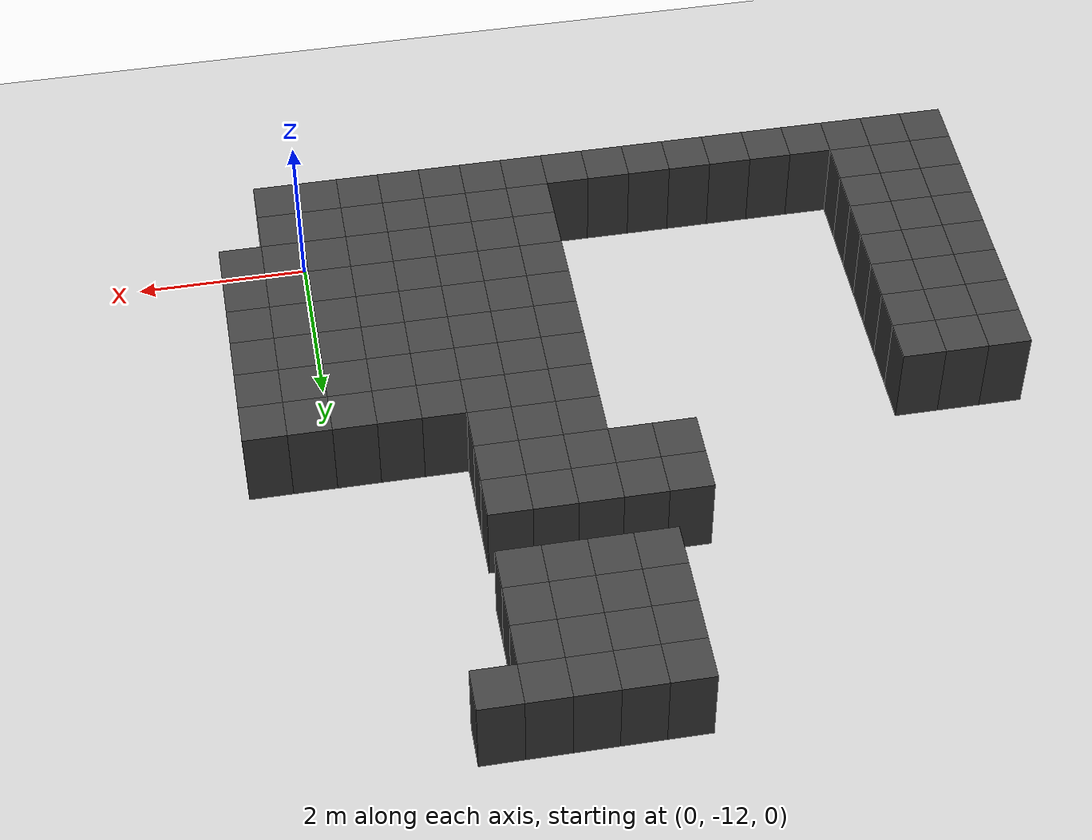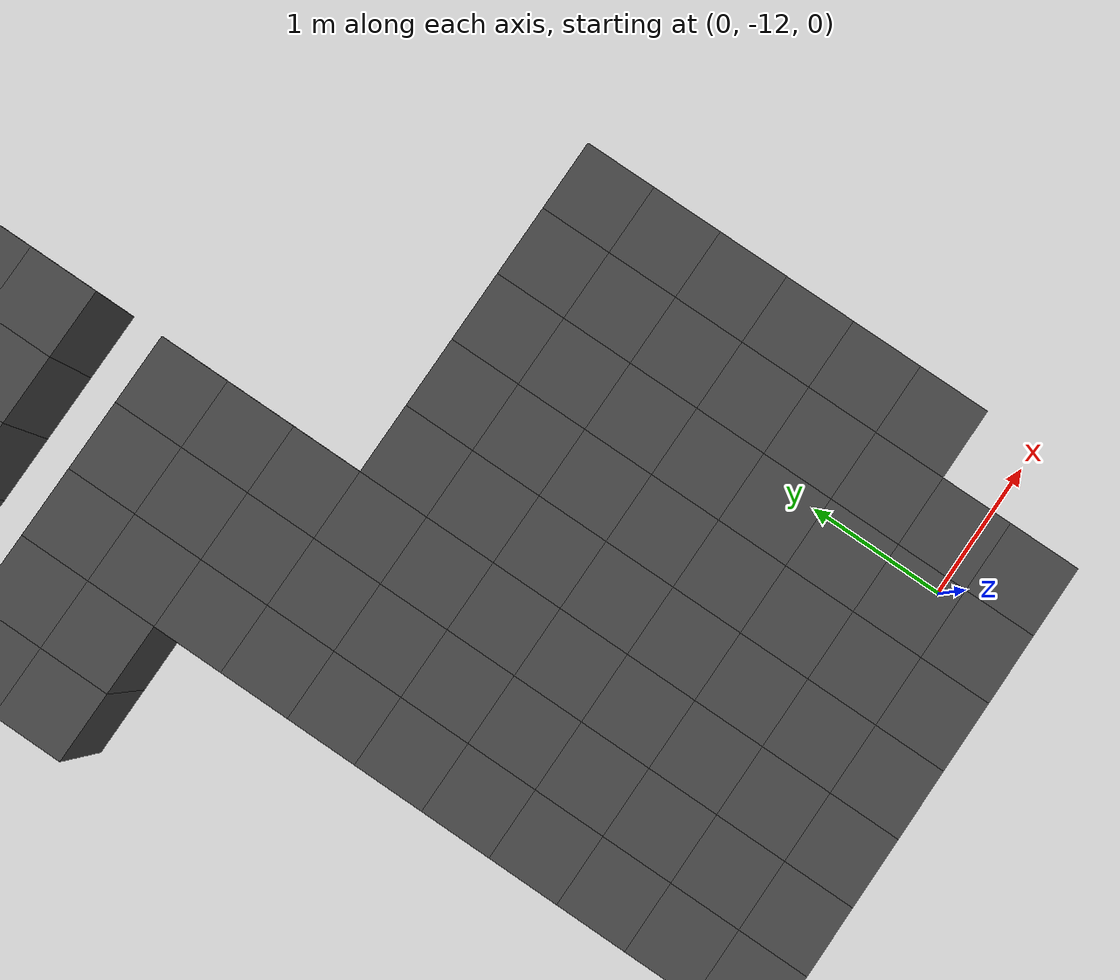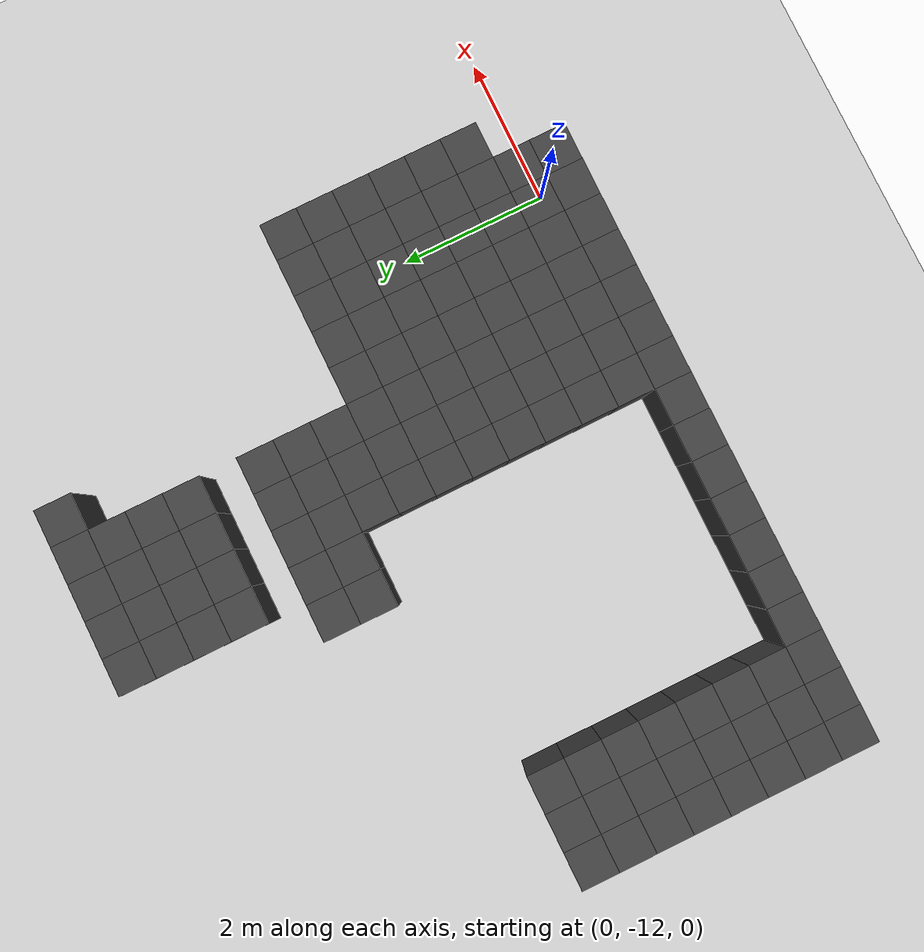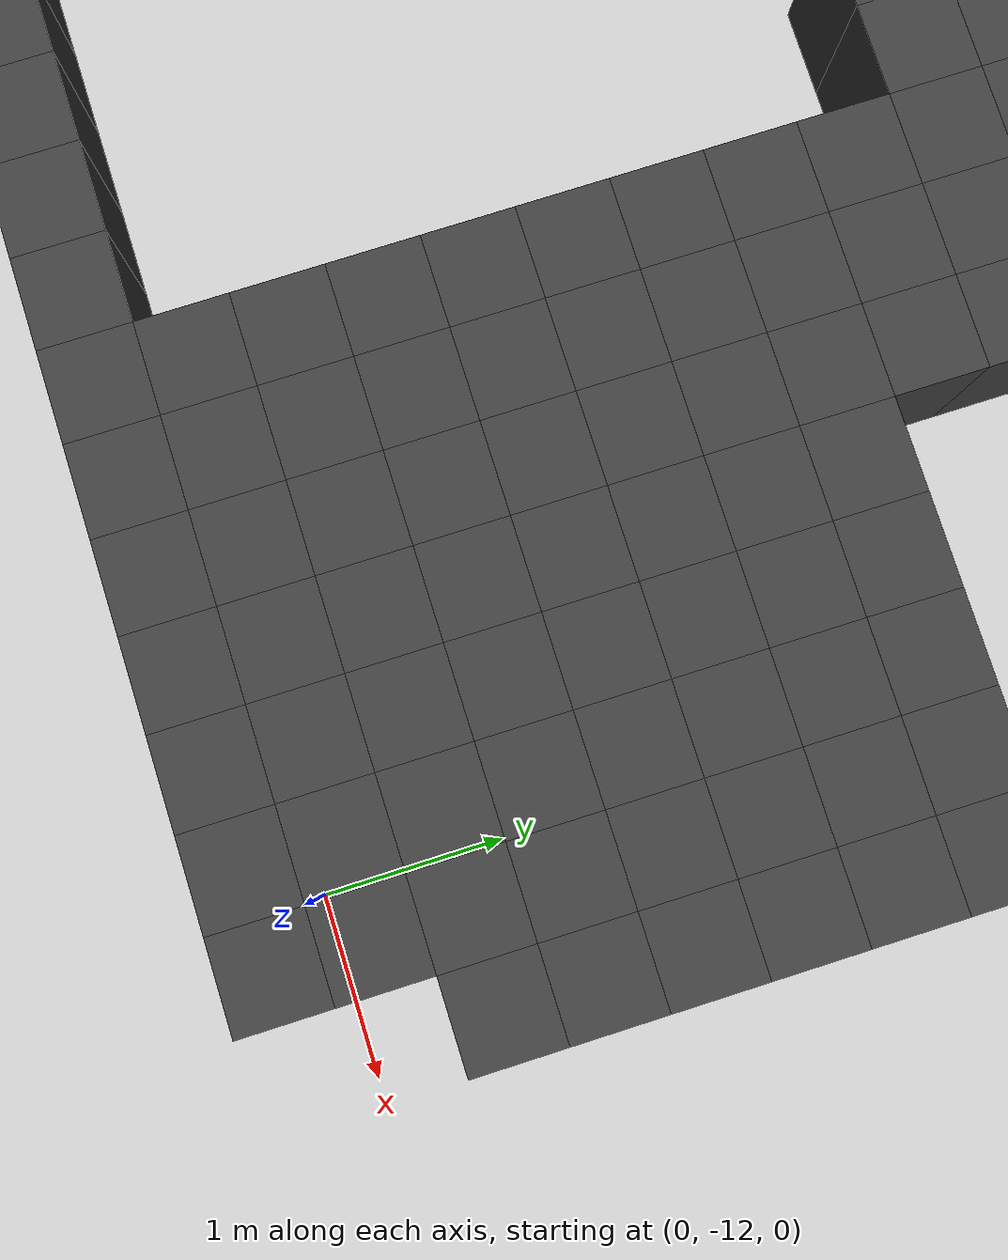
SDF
<sdf version="1.7">
 <world name="map_12818">
  <model name="ground_plane">
   <static>true</static>
   <link name="link">
    <collision name="collision">
     <geometry><plane><normal>0 0 1</normal><size>200 200</size></plane></geometry>
    </collision>
    <visual name="visual">
     <geometry><plane><normal>0 0 1</normal><size>200 200</size></plane></geometry>
     <material><ambient>0.8 0.8 0.8 1</ambient><diffuse>0.8 0.8 0.8 1</diffuse></material>
    </visual>
   </link>
  </model>
  <model name="maze_environment">
   <static>true</static>
   <link name="wall_1441">
    <pose>-3.250 -4.750 0.500 0 0 0</pose>
    <collision name="col"><geometry><box><size>0.5 0.5 1.0</size></box></geometry></collision>
    <visual name="vis">
     <geometry><box><size>0.5 0.5 1.0</size></box></geometry>
     <material><ambient>0.15 0.15 0.15 1</ambient><diffuse>0.25 0.25 0.25 1</diffuse></material>
    </visual>
   </link>
   <link name="wall_1442">
    <pose>-2.750 -4.750 0.500 0 0 0</pose>
    <collision name="col"><geometry><box><size>0.5 0.5 1.0</size></box></geometry></collision>
    <visual name="vis">
     <geometry><box><size>0.5 0.5 1.0</size></box></geometry>
     <material><ambient>0.15 0.15 0.15 1</ambient><diffuse>0.25 0.25 0.25 1</diffuse></material>
    </visual>
   </link>
   <link name="wall_1443">
    <pose>-2.250 -4.750 0.500 0 0 0</pose>
    <collision name="col"><geometry><box><size>0.5 0.5 1.0</size></box></geometry></collision>
    <visual name="vis">
     <geometry><box><size>0.5 0.5 1.0</size></box></geometry>
     <material><ambient>0.15 0.15 0.15 1</ambient><diffuse>0.25 0.25 0.25 1</diffuse></material>
    </visual>
   </link>
   <link name="wall_1444">
    <pose>-1.750 -4.750 0.500 0 0 0</pose>
    <collision name="col"><geometry><box><size>0.5 0.5 1.0</size></box></geometry></collision>
    <visual name="vis">
     <geometry><box><size>0.5 0.5 1.0</size></box></geometry>
     <material><ambient>0.15 0.15 0.15 1</ambient><diffuse>0.25 0.25 0.25 1</diffuse></material>
    </visual>
   </link>
   <link name="wall_1445">
    <pose>-1.250 -4.750 0.500 0 0 0</pose>
    <collision name="col"><geometry><box><size>0.5 0.5 1.0</size></box></geometry></collision>
    <visual name="vis">
     <geometry><box><size>0.5 0.5 1.0</size></box></geometry>
     <material><ambient>0.15 0.15 0.15 1</ambient><diffuse>0.25 0.25 0.25 1</diffuse></material>
    </visual>
   </link>
   <link name="wall_1476">
    <pose>-3.250 -5.250 0.500 0 0 0</pose>
    <collision name="col"><geometry><box><size>0.5 0.5 1.0</size></box></geometry></collision>
    <visual name="vis">
     <geometry><box><size>0.5 0.5 1.0</size></box></geometry>
     <material><ambient>0.15 0.15 0.15 1</ambient><diffuse>0.25 0.25 0.25 1</diffuse></material>
    </visual>
   </link>
   <link name="wall_1477">
    <pose>-2.750 -5.250 0.500 0 0 0</pose>
    <collision name="col"><geometry><box><size>0.5 0.5 1.0</size></box></geometry></collision>
    <visual name="vis">
     <geometry><box><size>0.5 0.5 1.0</size></box></geometry>
     <material><ambient>0.15 0.15 0.15 1</ambient><diffuse>0.25 0.25 0.25 1</diffuse></material>
    </visual>
   </link>
   <link name="wall_1478">
    <pose>-2.250 -5.250 0.500 0 0 0</pose>
    <collision name="col"><geometry><box><size>0.5 0.5 1.0</size></box></geometry></collision>
    <visual name="vis">
     <geometry><box><size>0.5 0.5 1.0</size></box></geometry>
     <material><ambient>0.15 0.15 0.15 1</ambient><diffuse>0.25 0.25 0.25 1</diffuse></material>
    </visual>
   </link>
   <link name="wall_1479">
    <pose>-1.750 -5.250 0.500 0 0 0</pose>
    <collision name="col"><geometry><box><size>0.5 0.5 1.0</size></box></geometry></collision>
    <visual name="vis">
     <geometry><box><size>0.5 0.5 1.0</size></box></geometry>
     <material><ambient>0.15 0.15 0.15 1</ambient><diffuse>0.25 0.25 0.25 1</diffuse></material>
    </visual>
   </link>
   <link name="wall_1509">
    <pose>-3.250 -5.750 0.500 0 0 0</pose>
    <collision name="col"><geometry><box><size>0.5 0.5 1.0</size></box></geometry></collision>
    <visual name="vis">
     <geometry><box><size>0.5 0.5 1.0</size></box></geometry>
     <material><ambient>0.15 0.15 0.15 1</ambient><diffuse>0.25 0.25 0.25 1</diffuse></material>
    </visual>
   </link>
   <link name="wall_1510">
    <pose>-2.750 -5.750 0.500 0 0 0</pose>
    <collision name="col"><geometry><box><size>0.5 0.5 1.0</size></box></geometry></collision>
    <visual name="vis">
     <geometry><box><size>0.5 0.5 1.0</size></box></geometry>
     <material><ambient>0.15 0.15 0.15 1</ambient><diffuse>0.25 0.25 0.25 1</diffuse></material>
    </visual>
   </link>
   <link name="wall_1511">
    <pose>-2.250 -5.750 0.500 0 0 0</pose>
    <collision name="col"><geometry><box><size>0.5 0.5 1.0</size></box></geometry></collision>
    <visual name="vis">
     <geometry><box><size>0.5 0.5 1.0</size></box></geometry>
     <material><ambient>0.15 0.15 0.15 1</ambient><diffuse>0.25 0.25 0.25 1</diffuse></material>
    </visual>
   </link>
   <link name="wall_1512">
    <pose>-1.750 -5.750 0.500 0 0 0</pose>
    <collision name="col"><geometry><box><size>0.5 0.5 1.0</size></box></geometry></collision>
    <visual name="vis">
     <geometry><box><size>0.5 0.5 1.0</size></box></geometry>
     <material><ambient>0.15 0.15 0.15 1</ambient><diffuse>0.25 0.25 0.25 1</diffuse></material>
    </visual>
   </link>
   <link name="wall_1542">
    <pose>-3.250 -6.250 0.500 0 0 0</pose>
    <collision name="col"><geometry><box><size>0.5 0.5 1.0</size></box></geometry></collision>
    <visual name="vis">
     <geometry><box><size>0.5 0.5 1.0</size></box></geometry>
     <material><ambient>0.15 0.15 0.15 1</ambient><diffuse>0.25 0.25 0.25 1</diffuse></material>
    </visual>
   </link>
   <link name="wall_1543">
    <pose>-2.750 -6.250 0.500 0 0 0</pose>
    <collision name="col"><geometry><box><size>0.5 0.5 1.0</size></box></geometry></collision>
    <visual name="vis">
     <geometry><box><size>0.5 0.5 1.0</size></box></geometry>
     <material><ambient>0.15 0.15 0.15 1</ambient><diffuse>0.25 0.25 0.25 1</diffuse></material>
    </visual>
   </link>
   <link name="wall_1544">
    <pose>-2.250 -6.250 0.500 0 0 0</pose>
    <collision name="col"><geometry><box><size>0.5 0.5 1.0</size></box></geometry></collision>
    <visual name="vis">
     <geometry><box><size>0.5 0.5 1.0</size></box></geometry>
     <material><ambient>0.15 0.15 0.15 1</ambient><diffuse>0.25 0.25 0.25 1</diffuse></material>
    </visual>
   </link>
   <link name="wall_1545">
    <pose>-1.750 -6.250 0.500 0 0 0</pose>
    <collision name="col"><geometry><box><size>0.5 0.5 1.0</size></box></geometry></collision>
    <visual name="vis">
     <geometry><box><size>0.5 0.5 1.0</size></box></geometry>
     <material><ambient>0.15 0.15 0.15 1</ambient><diffuse>0.25 0.25 0.25 1</diffuse></material>
    </visual>
   </link>
   <link name="wall_1606">
    <pose>-3.750 -7.250 0.500 0 0 0</pose>
    <collision name="col"><geometry><box><size>0.5 0.5 1.0</size></box></geometry></collision>
    <visual name="vis">
     <geometry><box><size>0.5 0.5 1.0</size></box></geometry>
     <material><ambient>0.15 0.15 0.15 1</ambient><diffuse>0.25 0.25 0.25 1</diffuse></material>
    </visual>
   </link>
   <link name="wall_1607">
    <pose>-3.250 -7.250 0.500 0 0 0</pose>
    <collision name="col"><geometry><box><size>0.5 0.5 1.0</size></box></geometry></collision>
    <visual name="vis">
     <geometry><box><size>0.5 0.5 1.0</size></box></geometry>
     <material><ambient>0.15 0.15 0.15 1</ambient><diffuse>0.25 0.25 0.25 1</diffuse></material>
    </visual>
   </link>
   <link name="wall_1608">
    <pose>-2.750 -7.250 0.500 0 0 0</pose>
    <collision name="col"><geometry><box><size>0.5 0.5 1.0</size></box></geometry></collision>
    <visual name="vis">
     <geometry><box><size>0.5 0.5 1.0</size></box></geometry>
     <material><ambient>0.15 0.15 0.15 1</ambient><diffuse>0.25 0.25 0.25 1</diffuse></material>
    </visual>
   </link>
   <link name="wall_1609">
    <pose>-2.250 -7.250 0.500 0 0 0</pose>
    <collision name="col"><geometry><box><size>0.5 0.5 1.0</size></box></geometry></collision>
    <visual name="vis">
     <geometry><box><size>0.5 0.5 1.0</size></box></geometry>
     <material><ambient>0.15 0.15 0.15 1</ambient><diffuse>0.25 0.25 0.25 1</diffuse></material>
    </visual>
   </link>
   <link name="wall_1610">
    <pose>-1.750 -7.250 0.500 0 0 0</pose>
    <collision name="col"><geometry><box><size>0.5 0.5 1.0</size></box></geometry></collision>
    <visual name="vis">
     <geometry><box><size>0.5 0.5 1.0</size></box></geometry>
     <material><ambient>0.15 0.15 0.15 1</ambient><diffuse>0.25 0.25 0.25 1</diffuse></material>
    </visual>
   </link>
   <link name="wall_1634">
    <pose>-3.750 -7.750 0.500 0 0 0</pose>
    <collision name="col"><geometry><box><size>0.5 0.5 1.0</size></box></geometry></collision>
    <visual name="vis">
     <geometry><box><size>0.5 0.5 1.0</size></box></geometry>
     <material><ambient>0.15 0.15 0.15 1</ambient><diffuse>0.25 0.25 0.25 1</diffuse></material>
    </visual>
   </link>
   <link name="wall_1635">
    <pose>-3.250 -7.750 0.500 0 0 0</pose>
    <collision name="col"><geometry><box><size>0.5 0.5 1.0</size></box></geometry></collision>
    <visual name="vis">
     <geometry><box><size>0.5 0.5 1.0</size></box></geometry>
     <material><ambient>0.15 0.15 0.15 1</ambient><diffuse>0.25 0.25 0.25 1</diffuse></material>
    </visual>
   </link>
   <link name="wall_1636">
    <pose>-2.750 -7.750 0.500 0 0 0</pose>
    <collision name="col"><geometry><box><size>0.5 0.5 1.0</size></box></geometry></collision>
    <visual name="vis">
     <geometry><box><size>0.5 0.5 1.0</size></box></geometry>
     <material><ambient>0.15 0.15 0.15 1</ambient><diffuse>0.25 0.25 0.25 1</diffuse></material>
    </visual>
   </link>
   <link name="wall_1637">
    <pose>-2.250 -7.750 0.500 0 0 0</pose>
    <collision name="col"><geometry><box><size>0.5 0.5 1.0</size></box></geometry></collision>
    <visual name="vis">
     <geometry><box><size>0.5 0.5 1.0</size></box></geometry>
     <material><ambient>0.15 0.15 0.15 1</ambient><diffuse>0.25 0.25 0.25 1</diffuse></material>
    </visual>
   </link>
   <link name="wall_1638">
    <pose>-1.750 -7.750 0.500 0 0 0</pose>
    <collision name="col"><geometry><box><size>0.5 0.5 1.0</size></box></geometry></collision>
    <visual name="vis">
     <geometry><box><size>0.5 0.5 1.0</size></box></geometry>
     <material><ambient>0.15 0.15 0.15 1</ambient><diffuse>0.25 0.25 0.25 1</diffuse></material>
    </visual>
   </link>
   <link name="wall_1662">
    <pose>-2.750 -8.250 0.500 0 0 0</pose>
    <collision name="col"><geometry><box><size>0.5 0.5 1.0</size></box></geometry></collision>
    <visual name="vis">
     <geometry><box><size>0.5 0.5 1.0</size></box></geometry>
     <material><ambient>0.15 0.15 0.15 1</ambient><diffuse>0.25 0.25 0.25 1</diffuse></material>
    </visual>
   </link>
   <link name="wall_1663">
    <pose>-2.250 -8.250 0.500 0 0 0</pose>
    <collision name="col"><geometry><box><size>0.5 0.5 1.0</size></box></geometry></collision>
    <visual name="vis">
     <geometry><box><size>0.5 0.5 1.0</size></box></geometry>
     <material><ambient>0.15 0.15 0.15 1</ambient><diffuse>0.25 0.25 0.25 1</diffuse></material>
    </visual>
   </link>
   <link name="wall_1664">
    <pose>-1.750 -8.250 0.500 0 0 0</pose>
    <collision name="col"><geometry><box><size>0.5 0.5 1.0</size></box></geometry></collision>
    <visual name="vis">
     <geometry><box><size>0.5 0.5 1.0</size></box></geometry>
     <material><ambient>0.15 0.15 0.15 1</ambient><diffuse>0.25 0.25 0.25 1</diffuse></material>
    </visual>
   </link>
   <link name="wall_1676">
    <pose>-7.750 -8.750 0.500 0 0 0</pose>
    <collision name="col"><geometry><box><size>0.5 0.5 1.0</size></box></geometry></collision>
    <visual name="vis">
     <geometry><box><size>0.5 0.5 1.0</size></box></geometry>
     <material><ambient>0.15 0.15 0.15 1</ambient><diffuse>0.25 0.25 0.25 1</diffuse></material>
    </visual>
   </link>
   <link name="wall_1677">
    <pose>-7.250 -8.750 0.500 0 0 0</pose>
    <collision name="col"><geometry><box><size>0.5 0.5 1.0</size></box></geometry></collision>
    <visual name="vis">
     <geometry><box><size>0.5 0.5 1.0</size></box></geometry>
     <material><ambient>0.15 0.15 0.15 1</ambient><diffuse>0.25 0.25 0.25 1</diffuse></material>
    </visual>
   </link>
   <link name="wall_1678">
    <pose>-6.750 -8.750 0.500 0 0 0</pose>
    <collision name="col"><geometry><box><size>0.5 0.5 1.0</size></box></geometry></collision>
    <visual name="vis">
     <geometry><box><size>0.5 0.5 1.0</size></box></geometry>
     <material><ambient>0.15 0.15 0.15 1</ambient><diffuse>0.25 0.25 0.25 1</diffuse></material>
    </visual>
   </link>
   <link name="wall_1679">
    <pose>-2.750 -8.750 0.500 0 0 0</pose>
    <collision name="col"><geometry><box><size>0.5 0.5 1.0</size></box></geometry></collision>
    <visual name="vis">
     <geometry><box><size>0.5 0.5 1.0</size></box></geometry>
     <material><ambient>0.15 0.15 0.15 1</ambient><diffuse>0.25 0.25 0.25 1</diffuse></material>
    </visual>
   </link>
   <link name="wall_1680">
    <pose>-2.250 -8.750 0.500 0 0 0</pose>
    <collision name="col"><geometry><box><size>0.5 0.5 1.0</size></box></geometry></collision>
    <visual name="vis">
     <geometry><box><size>0.5 0.5 1.0</size></box></geometry>
     <material><ambient>0.15 0.15 0.15 1</ambient><diffuse>0.25 0.25 0.25 1</diffuse></material>
    </visual>
   </link>
   <link name="wall_1681">
    <pose>-1.750 -8.750 0.500 0 0 0</pose>
    <collision name="col"><geometry><box><size>0.5 0.5 1.0</size></box></geometry></collision>
    <visual name="vis">
     <geometry><box><size>0.5 0.5 1.0</size></box></geometry>
     <material><ambient>0.15 0.15 0.15 1</ambient><diffuse>0.25 0.25 0.25 1</diffuse></material>
    </visual>
   </link>
   <link name="wall_1682">
    <pose>-1.250 -8.750 0.500 0 0 0</pose>
    <collision name="col"><geometry><box><size>0.5 0.5 1.0</size></box></geometry></collision>
    <visual name="vis">
     <geometry><box><size>0.5 0.5 1.0</size></box></geometry>
     <material><ambient>0.15 0.15 0.15 1</ambient><diffuse>0.25 0.25 0.25 1</diffuse></material>
    </visual>
   </link>
   <link name="wall_1683">
    <pose>-0.750 -8.750 0.500 0 0 0</pose>
    <collision name="col"><geometry><box><size>0.5 0.5 1.0</size></box></geometry></collision>
    <visual name="vis">
     <geometry><box><size>0.5 0.5 1.0</size></box></geometry>
     <material><ambient>0.15 0.15 0.15 1</ambient><diffuse>0.25 0.25 0.25 1</diffuse></material>
    </visual>
   </link>
   <link name="wall_1684">
    <pose>-0.250 -8.750 0.500 0 0 0</pose>
    <collision name="col"><geometry><box><size>0.5 0.5 1.0</size></box></geometry></collision>
    <visual name="vis">
     <geometry><box><size>0.5 0.5 1.0</size></box></geometry>
     <material><ambient>0.15 0.15 0.15 1</ambient><diffuse>0.25 0.25 0.25 1</diffuse></material>
    </visual>
   </link>
   <link name="wall_1685">
    <pose>0.250 -8.750 0.500 0 0 0</pose>
    <collision name="col"><geometry><box><size>0.5 0.5 1.0</size></box></geometry></collision>
    <visual name="vis">
     <geometry><box><size>0.5 0.5 1.0</size></box></geometry>
     <material><ambient>0.15 0.15 0.15 1</ambient><diffuse>0.25 0.25 0.25 1</diffuse></material>
    </visual>
   </link>
   <link name="wall_1686">
    <pose>0.750 -8.750 0.500 0 0 0</pose>
    <collision name="col"><geometry><box><size>0.5 0.5 1.0</size></box></geometry></collision>
    <visual name="vis">
     <geometry><box><size>0.5 0.5 1.0</size></box></geometry>
     <material><ambient>0.15 0.15 0.15 1</ambient><diffuse>0.25 0.25 0.25 1</diffuse></material>
    </visual>
   </link>
   <link name="wall_1709">
    <pose>-7.750 -9.250 0.500 0 0 0</pose>
    <collision name="col"><geometry><box><size>0.5 0.5 1.0</size></box></geometry></collision>
    <visual name="vis">
     <geometry><box><size>0.5 0.5 1.0</size></box></geometry>
     <material><ambient>0.15 0.15 0.15 1</ambient><diffuse>0.25 0.25 0.25 1</diffuse></material>
    </visual>
   </link>
   <link name="wall_1710">
    <pose>-7.250 -9.250 0.500 0 0 0</pose>
    <collision name="col"><geometry><box><size>0.5 0.5 1.0</size></box></geometry></collision>
    <visual name="vis">
     <geometry><box><size>0.5 0.5 1.0</size></box></geometry>
     <material><ambient>0.15 0.15 0.15 1</ambient><diffuse>0.25 0.25 0.25 1</diffuse></material>
    </visual>
   </link>
   <link name="wall_1711">
    <pose>-6.750 -9.250 0.500 0 0 0</pose>
    <collision name="col"><geometry><box><size>0.5 0.5 1.0</size></box></geometry></collision>
    <visual name="vis">
     <geometry><box><size>0.5 0.5 1.0</size></box></geometry>
     <material><ambient>0.15 0.15 0.15 1</ambient><diffuse>0.25 0.25 0.25 1</diffuse></material>
    </visual>
   </link>
   <link name="wall_1712">
    <pose>-2.750 -9.250 0.500 0 0 0</pose>
    <collision name="col"><geometry><box><size>0.5 0.5 1.0</size></box></geometry></collision>
    <visual name="vis">
     <geometry><box><size>0.5 0.5 1.0</size></box></geometry>
     <material><ambient>0.15 0.15 0.15 1</ambient><diffuse>0.25 0.25 0.25 1</diffuse></material>
    </visual>
   </link>
   <link name="wall_1713">
    <pose>-2.250 -9.250 0.500 0 0 0</pose>
    <collision name="col"><geometry><box><size>0.5 0.5 1.0</size></box></geometry></collision>
    <visual name="vis">
     <geometry><box><size>0.5 0.5 1.0</size></box></geometry>
     <material><ambient>0.15 0.15 0.15 1</ambient><diffuse>0.25 0.25 0.25 1</diffuse></material>
    </visual>
   </link>
   <link name="wall_1714">
    <pose>-1.750 -9.250 0.500 0 0 0</pose>
    <collision name="col"><geometry><box><size>0.5 0.5 1.0</size></box></geometry></collision>
    <visual name="vis">
     <geometry><box><size>0.5 0.5 1.0</size></box></geometry>
     <material><ambient>0.15 0.15 0.15 1</ambient><diffuse>0.25 0.25 0.25 1</diffuse></material>
    </visual>
   </link>
   <link name="wall_1715">
    <pose>-1.250 -9.250 0.500 0 0 0</pose>
    <collision name="col"><geometry><box><size>0.5 0.5 1.0</size></box></geometry></collision>
    <visual name="vis">
     <geometry><box><size>0.5 0.5 1.0</size></box></geometry>
     <material><ambient>0.15 0.15 0.15 1</ambient><diffuse>0.25 0.25 0.25 1</diffuse></material>
    </visual>
   </link>
   <link name="wall_1716">
    <pose>-0.750 -9.250 0.500 0 0 0</pose>
    <collision name="col"><geometry><box><size>0.5 0.5 1.0</size></box></geometry></collision>
    <visual name="vis">
     <geometry><box><size>0.5 0.5 1.0</size></box></geometry>
     <material><ambient>0.15 0.15 0.15 1</ambient><diffuse>0.25 0.25 0.25 1</diffuse></material>
    </visual>
   </link>
   <link name="wall_1717">
    <pose>-0.250 -9.250 0.500 0 0 0</pose>
    <collision name="col"><geometry><box><size>0.5 0.5 1.0</size></box></geometry></collision>
    <visual name="vis">
     <geometry><box><size>0.5 0.5 1.0</size></box></geometry>
     <material><ambient>0.15 0.15 0.15 1</ambient><diffuse>0.25 0.25 0.25 1</diffuse></material>
    </visual>
   </link>
   <link name="wall_1718">
    <pose>0.250 -9.250 0.500 0 0 0</pose>
    <collision name="col"><geometry><box><size>0.5 0.5 1.0</size></box></geometry></collision>
    <visual name="vis">
     <geometry><box><size>0.5 0.5 1.0</size></box></geometry>
     <material><ambient>0.15 0.15 0.15 1</ambient><diffuse>0.25 0.25 0.25 1</diffuse></material>
    </visual>
   </link>
   <link name="wall_1719">
    <pose>0.750 -9.250 0.500 0 0 0</pose>
    <collision name="col"><geometry><box><size>0.5 0.5 1.0</size></box></geometry></collision>
    <visual name="vis">
     <geometry><box><size>0.5 0.5 1.0</size></box></geometry>
     <material><ambient>0.15 0.15 0.15 1</ambient><diffuse>0.25 0.25 0.25 1</diffuse></material>
    </visual>
   </link>
   <link name="wall_1742">
    <pose>-7.750 -9.750 0.500 0 0 0</pose>
    <collision name="col"><geometry><box><size>0.5 0.5 1.0</size></box></geometry></collision>
    <visual name="vis">
     <geometry><box><size>0.5 0.5 1.0</size></box></geometry>
     <material><ambient>0.15 0.15 0.15 1</ambient><diffuse>0.25 0.25 0.25 1</diffuse></material>
    </visual>
   </link>
   <link name="wall_1743">
    <pose>-7.250 -9.750 0.500 0 0 0</pose>
    <collision name="col"><geometry><box><size>0.5 0.5 1.0</size></box></geometry></collision>
    <visual name="vis">
     <geometry><box><size>0.5 0.5 1.0</size></box></geometry>
     <material><ambient>0.15 0.15 0.15 1</ambient><diffuse>0.25 0.25 0.25 1</diffuse></material>
    </visual>
   </link>
   <link name="wall_1744">
    <pose>-6.750 -9.750 0.500 0 0 0</pose>
    <collision name="col"><geometry><box><size>0.5 0.5 1.0</size></box></geometry></collision>
    <visual name="vis">
     <geometry><box><size>0.5 0.5 1.0</size></box></geometry>
     <material><ambient>0.15 0.15 0.15 1</ambient><diffuse>0.25 0.25 0.25 1</diffuse></material>
    </visual>
   </link>
   <link name="wall_1745">
    <pose>-2.750 -9.750 0.500 0 0 0</pose>
    <collision name="col"><geometry><box><size>0.5 0.5 1.0</size></box></geometry></collision>
    <visual name="vis">
     <geometry><box><size>0.5 0.5 1.0</size></box></geometry>
     <material><ambient>0.15 0.15 0.15 1</ambient><diffuse>0.25 0.25 0.25 1</diffuse></material>
    </visual>
   </link>
   <link name="wall_1746">
    <pose>-2.250 -9.750 0.500 0 0 0</pose>
    <collision name="col"><geometry><box><size>0.5 0.5 1.0</size></box></geometry></collision>
    <visual name="vis">
     <geometry><box><size>0.5 0.5 1.0</size></box></geometry>
     <material><ambient>0.15 0.15 0.15 1</ambient><diffuse>0.25 0.25 0.25 1</diffuse></material>
    </visual>
   </link>
   <link name="wall_1747">
    <pose>-1.750 -9.750 0.500 0 0 0</pose>
    <collision name="col"><geometry><box><size>0.5 0.5 1.0</size></box></geometry></collision>
    <visual name="vis">
     <geometry><box><size>0.5 0.5 1.0</size></box></geometry>
     <material><ambient>0.15 0.15 0.15 1</ambient><diffuse>0.25 0.25 0.25 1</diffuse></material>
    </visual>
   </link>
   <link name="wall_1748">
    <pose>-1.250 -9.750 0.500 0 0 0</pose>
    <collision name="col"><geometry><box><size>0.5 0.5 1.0</size></box></geometry></collision>
    <visual name="vis">
     <geometry><box><size>0.5 0.5 1.0</size></box></geometry>
     <material><ambient>0.15 0.15 0.15 1</ambient><diffuse>0.25 0.25 0.25 1</diffuse></material>
    </visual>
   </link>
   <link name="wall_1749">
    <pose>-0.750 -9.750 0.500 0 0 0</pose>
    <collision name="col"><geometry><box><size>0.5 0.5 1.0</size></box></geometry></collision>
    <visual name="vis">
     <geometry><box><size>0.5 0.5 1.0</size></box></geometry>
     <material><ambient>0.15 0.15 0.15 1</ambient><diffuse>0.25 0.25 0.25 1</diffuse></material>
    </visual>
   </link>
   <link name="wall_1750">
    <pose>-0.250 -9.750 0.500 0 0 0</pose>
    <collision name="col"><geometry><box><size>0.5 0.5 1.0</size></box></geometry></collision>
    <visual name="vis">
     <geometry><box><size>0.5 0.5 1.0</size></box></geometry>
     <material><ambient>0.15 0.15 0.15 1</ambient><diffuse>0.25 0.25 0.25 1</diffuse></material>
    </visual>
   </link>
   <link name="wall_1751">
    <pose>0.250 -9.750 0.500 0 0 0</pose>
    <collision name="col"><geometry><box><size>0.5 0.5 1.0</size></box></geometry></collision>
    <visual name="vis">
     <geometry><box><size>0.5 0.5 1.0</size></box></geometry>
     <material><ambient>0.15 0.15 0.15 1</ambient><diffuse>0.25 0.25 0.25 1</diffuse></material>
    </visual>
   </link>
   <link name="wall_1752">
    <pose>0.750 -9.750 0.500 0 0 0</pose>
    <collision name="col"><geometry><box><size>0.5 0.5 1.0</size></box></geometry></collision>
    <visual name="vis">
     <geometry><box><size>0.5 0.5 1.0</size></box></geometry>
     <material><ambient>0.15 0.15 0.15 1</ambient><diffuse>0.25 0.25 0.25 1</diffuse></material>
    </visual>
   </link>
   <link name="wall_1779">
    <pose>-7.750 -10.250 0.500 0 0 0</pose>
    <collision name="col"><geometry><box><size>0.5 0.5 1.0</size></box></geometry></collision>
    <visual name="vis">
     <geometry><box><size>0.5 0.5 1.0</size></box></geometry>
     <material><ambient>0.15 0.15 0.15 1</ambient><diffuse>0.25 0.25 0.25 1</diffuse></material>
    </visual>
   </link>
   <link name="wall_1780">
    <pose>-7.250 -10.250 0.500 0 0 0</pose>
    <collision name="col"><geometry><box><size>0.5 0.5 1.0</size></box></geometry></collision>
    <visual name="vis">
     <geometry><box><size>0.5 0.5 1.0</size></box></geometry>
     <material><ambient>0.15 0.15 0.15 1</ambient><diffuse>0.25 0.25 0.25 1</diffuse></material>
    </visual>
   </link>
   <link name="wall_1781">
    <pose>-6.750 -10.250 0.500 0 0 0</pose>
    <collision name="col"><geometry><box><size>0.5 0.5 1.0</size></box></geometry></collision>
    <visual name="vis">
     <geometry><box><size>0.5 0.5 1.0</size></box></geometry>
     <material><ambient>0.15 0.15 0.15 1</ambient><diffuse>0.25 0.25 0.25 1</diffuse></material>
    </visual>
   </link>
   <link name="wall_1782">
    <pose>-2.750 -10.250 0.500 0 0 0</pose>
    <collision name="col"><geometry><box><size>0.5 0.5 1.0</size></box></geometry></collision>
    <visual name="vis">
     <geometry><box><size>0.5 0.5 1.0</size></box></geometry>
     <material><ambient>0.15 0.15 0.15 1</ambient><diffuse>0.25 0.25 0.25 1</diffuse></material>
    </visual>
   </link>
   <link name="wall_1783">
    <pose>-2.250 -10.250 0.500 0 0 0</pose>
    <collision name="col"><geometry><box><size>0.5 0.5 1.0</size></box></geometry></collision>
    <visual name="vis">
     <geometry><box><size>0.5 0.5 1.0</size></box></geometry>
     <material><ambient>0.15 0.15 0.15 1</ambient><diffuse>0.25 0.25 0.25 1</diffuse></material>
    </visual>
   </link>
   <link name="wall_1784">
    <pose>-1.750 -10.250 0.500 0 0 0</pose>
    <collision name="col"><geometry><box><size>0.5 0.5 1.0</size></box></geometry></collision>
    <visual name="vis">
     <geometry><box><size>0.5 0.5 1.0</size></box></geometry>
     <material><ambient>0.15 0.15 0.15 1</ambient><diffuse>0.25 0.25 0.25 1</diffuse></material>
    </visual>
   </link>
   <link name="wall_1785">
    <pose>-1.250 -10.250 0.500 0 0 0</pose>
    <collision name="col"><geometry><box><size>0.5 0.5 1.0</size></box></geometry></collision>
    <visual name="vis">
     <geometry><box><size>0.5 0.5 1.0</size></box></geometry>
     <material><ambient>0.15 0.15 0.15 1</ambient><diffuse>0.25 0.25 0.25 1</diffuse></material>
    </visual>
   </link>
   <link name="wall_1786">
    <pose>-0.750 -10.250 0.500 0 0 0</pose>
    <collision name="col"><geometry><box><size>0.5 0.5 1.0</size></box></geometry></collision>
    <visual name="vis">
     <geometry><box><size>0.5 0.5 1.0</size></box></geometry>
     <material><ambient>0.15 0.15 0.15 1</ambient><diffuse>0.25 0.25 0.25 1</diffuse></material>
    </visual>
   </link>
   <link name="wall_1787">
    <pose>-0.250 -10.250 0.500 0 0 0</pose>
    <collision name="col"><geometry><box><size>0.5 0.5 1.0</size></box></geometry></collision>
    <visual name="vis">
     <geometry><box><size>0.5 0.5 1.0</size></box></geometry>
     <material><ambient>0.15 0.15 0.15 1</ambient><diffuse>0.25 0.25 0.25 1</diffuse></material>
    </visual>
   </link>
   <link name="wall_1788">
    <pose>0.250 -10.250 0.500 0 0 0</pose>
    <collision name="col"><geometry><box><size>0.5 0.5 1.0</size></box></geometry></collision>
    <visual name="vis">
     <geometry><box><size>0.5 0.5 1.0</size></box></geometry>
     <material><ambient>0.15 0.15 0.15 1</ambient><diffuse>0.25 0.25 0.25 1</diffuse></material>
    </visual>
   </link>
   <link name="wall_1789">
    <pose>0.750 -10.250 0.500 0 0 0</pose>
    <collision name="col"><geometry><box><size>0.5 0.5 1.0</size></box></geometry></collision>
    <visual name="vis">
     <geometry><box><size>0.5 0.5 1.0</size></box></geometry>
     <material><ambient>0.15 0.15 0.15 1</ambient><diffuse>0.25 0.25 0.25 1</diffuse></material>
    </visual>
   </link>
   <link name="wall_1818">
    <pose>-7.750 -10.750 0.500 0 0 0</pose>
    <collision name="col"><geometry><box><size>0.5 0.5 1.0</size></box></geometry></collision>
    <visual name="vis">
     <geometry><box><size>0.5 0.5 1.0</size></box></geometry>
     <material><ambient>0.15 0.15 0.15 1</ambient><diffuse>0.25 0.25 0.25 1</diffuse></material>
    </visual>
   </link>
   <link name="wall_1819">
    <pose>-7.250 -10.750 0.500 0 0 0</pose>
    <collision name="col"><geometry><box><size>0.5 0.5 1.0</size></box></geometry></collision>
    <visual name="vis">
     <geometry><box><size>0.5 0.5 1.0</size></box></geometry>
     <material><ambient>0.15 0.15 0.15 1</ambient><diffuse>0.25 0.25 0.25 1</diffuse></material>
    </visual>
   </link>
   <link name="wall_1820">
    <pose>-6.750 -10.750 0.500 0 0 0</pose>
    <collision name="col"><geometry><box><size>0.5 0.5 1.0</size></box></geometry></collision>
    <visual name="vis">
     <geometry><box><size>0.5 0.5 1.0</size></box></geometry>
     <material><ambient>0.15 0.15 0.15 1</ambient><diffuse>0.25 0.25 0.25 1</diffuse></material>
    </visual>
   </link>
   <link name="wall_1821">
    <pose>-2.750 -10.750 0.500 0 0 0</pose>
    <collision name="col"><geometry><box><size>0.5 0.5 1.0</size></box></geometry></collision>
    <visual name="vis">
     <geometry><box><size>0.5 0.5 1.0</size></box></geometry>
     <material><ambient>0.15 0.15 0.15 1</ambient><diffuse>0.25 0.25 0.25 1</diffuse></material>
    </visual>
   </link>
   <link name="wall_1822">
    <pose>-2.250 -10.750 0.500 0 0 0</pose>
    <collision name="col"><geometry><box><size>0.5 0.5 1.0</size></box></geometry></collision>
    <visual name="vis">
     <geometry><box><size>0.5 0.5 1.0</size></box></geometry>
     <material><ambient>0.15 0.15 0.15 1</ambient><diffuse>0.25 0.25 0.25 1</diffuse></material>
    </visual>
   </link>
   <link name="wall_1823">
    <pose>-1.750 -10.750 0.500 0 0 0</pose>
    <collision name="col"><geometry><box><size>0.5 0.5 1.0</size></box></geometry></collision>
    <visual name="vis">
     <geometry><box><size>0.5 0.5 1.0</size></box></geometry>
     <material><ambient>0.15 0.15 0.15 1</ambient><diffuse>0.25 0.25 0.25 1</diffuse></material>
    </visual>
   </link>
   <link name="wall_1824">
    <pose>-1.250 -10.750 0.500 0 0 0</pose>
    <collision name="col"><geometry><box><size>0.5 0.5 1.0</size></box></geometry></collision>
    <visual name="vis">
     <geometry><box><size>0.5 0.5 1.0</size></box></geometry>
     <material><ambient>0.15 0.15 0.15 1</ambient><diffuse>0.25 0.25 0.25 1</diffuse></material>
    </visual>
   </link>
   <link name="wall_1825">
    <pose>-0.750 -10.750 0.500 0 0 0</pose>
    <collision name="col"><geometry><box><size>0.5 0.5 1.0</size></box></geometry></collision>
    <visual name="vis">
     <geometry><box><size>0.5 0.5 1.0</size></box></geometry>
     <material><ambient>0.15 0.15 0.15 1</ambient><diffuse>0.25 0.25 0.25 1</diffuse></material>
    </visual>
   </link>
   <link name="wall_1826">
    <pose>-0.250 -10.750 0.500 0 0 0</pose>
    <collision name="col"><geometry><box><size>0.5 0.5 1.0</size></box></geometry></collision>
    <visual name="vis">
     <geometry><box><size>0.5 0.5 1.0</size></box></geometry>
     <material><ambient>0.15 0.15 0.15 1</ambient><diffuse>0.25 0.25 0.25 1</diffuse></material>
    </visual>
   </link>
   <link name="wall_1827">
    <pose>0.250 -10.750 0.500 0 0 0</pose>
    <collision name="col"><geometry><box><size>0.5 0.5 1.0</size></box></geometry></collision>
    <visual name="vis">
     <geometry><box><size>0.5 0.5 1.0</size></box></geometry>
     <material><ambient>0.15 0.15 0.15 1</ambient><diffuse>0.25 0.25 0.25 1</diffuse></material>
    </visual>
   </link>
   <link name="wall_1828">
    <pose>0.750 -10.750 0.500 0 0 0</pose>
    <collision name="col"><geometry><box><size>0.5 0.5 1.0</size></box></geometry></collision>
    <visual name="vis">
     <geometry><box><size>0.5 0.5 1.0</size></box></geometry>
     <material><ambient>0.15 0.15 0.15 1</ambient><diffuse>0.25 0.25 0.25 1</diffuse></material>
    </visual>
   </link>
   <link name="wall_1856">
    <pose>-7.750 -11.250 0.500 0 0 0</pose>
    <collision name="col"><geometry><box><size>0.5 0.5 1.0</size></box></geometry></collision>
    <visual name="vis">
     <geometry><box><size>0.5 0.5 1.0</size></box></geometry>
     <material><ambient>0.15 0.15 0.15 1</ambient><diffuse>0.25 0.25 0.25 1</diffuse></material>
    </visual>
   </link>
   <link name="wall_1857">
    <pose>-7.250 -11.250 0.500 0 0 0</pose>
    <collision name="col"><geometry><box><size>0.5 0.5 1.0</size></box></geometry></collision>
    <visual name="vis">
     <geometry><box><size>0.5 0.5 1.0</size></box></geometry>
     <material><ambient>0.15 0.15 0.15 1</ambient><diffuse>0.25 0.25 0.25 1</diffuse></material>
    </visual>
   </link>
   <link name="wall_1858">
    <pose>-6.750 -11.250 0.500 0 0 0</pose>
    <collision name="col"><geometry><box><size>0.5 0.5 1.0</size></box></geometry></collision>
    <visual name="vis">
     <geometry><box><size>0.5 0.5 1.0</size></box></geometry>
     <material><ambient>0.15 0.15 0.15 1</ambient><diffuse>0.25 0.25 0.25 1</diffuse></material>
    </visual>
   </link>
   <link name="wall_1859">
    <pose>-2.750 -11.250 0.500 0 0 0</pose>
    <collision name="col"><geometry><box><size>0.5 0.5 1.0</size></box></geometry></collision>
    <visual name="vis">
     <geometry><box><size>0.5 0.5 1.0</size></box></geometry>
     <material><ambient>0.15 0.15 0.15 1</ambient><diffuse>0.25 0.25 0.25 1</diffuse></material>
    </visual>
   </link>
   <link name="wall_1860">
    <pose>-2.250 -11.250 0.500 0 0 0</pose>
    <collision name="col"><geometry><box><size>0.5 0.5 1.0</size></box></geometry></collision>
    <visual name="vis">
     <geometry><box><size>0.5 0.5 1.0</size></box></geometry>
     <material><ambient>0.15 0.15 0.15 1</ambient><diffuse>0.25 0.25 0.25 1</diffuse></material>
    </visual>
   </link>
   <link name="wall_1861">
    <pose>-1.750 -11.250 0.500 0 0 0</pose>
    <collision name="col"><geometry><box><size>0.5 0.5 1.0</size></box></geometry></collision>
    <visual name="vis">
     <geometry><box><size>0.5 0.5 1.0</size></box></geometry>
     <material><ambient>0.15 0.15 0.15 1</ambient><diffuse>0.25 0.25 0.25 1</diffuse></material>
    </visual>
   </link>
   <link name="wall_1862">
    <pose>-1.250 -11.250 0.500 0 0 0</pose>
    <collision name="col"><geometry><box><size>0.5 0.5 1.0</size></box></geometry></collision>
    <visual name="vis">
     <geometry><box><size>0.5 0.5 1.0</size></box></geometry>
     <material><ambient>0.15 0.15 0.15 1</ambient><diffuse>0.25 0.25 0.25 1</diffuse></material>
    </visual>
   </link>
   <link name="wall_1863">
    <pose>-0.750 -11.250 0.500 0 0 0</pose>
    <collision name="col"><geometry><box><size>0.5 0.5 1.0</size></box></geometry></collision>
    <visual name="vis">
     <geometry><box><size>0.5 0.5 1.0</size></box></geometry>
     <material><ambient>0.15 0.15 0.15 1</ambient><diffuse>0.25 0.25 0.25 1</diffuse></material>
    </visual>
   </link>
   <link name="wall_1864">
    <pose>-0.250 -11.250 0.500 0 0 0</pose>
    <collision name="col"><geometry><box><size>0.5 0.5 1.0</size></box></geometry></collision>
    <visual name="vis">
     <geometry><box><size>0.5 0.5 1.0</size></box></geometry>
     <material><ambient>0.15 0.15 0.15 1</ambient><diffuse>0.25 0.25 0.25 1</diffuse></material>
    </visual>
   </link>
   <link name="wall_1865">
    <pose>0.250 -11.250 0.500 0 0 0</pose>
    <collision name="col"><geometry><box><size>0.5 0.5 1.0</size></box></geometry></collision>
    <visual name="vis">
     <geometry><box><size>0.5 0.5 1.0</size></box></geometry>
     <material><ambient>0.15 0.15 0.15 1</ambient><diffuse>0.25 0.25 0.25 1</diffuse></material>
    </visual>
   </link>
   <link name="wall_1866">
    <pose>0.750 -11.250 0.500 0 0 0</pose>
    <collision name="col"><geometry><box><size>0.5 0.5 1.0</size></box></geometry></collision>
    <visual name="vis">
     <geometry><box><size>0.5 0.5 1.0</size></box></geometry>
     <material><ambient>0.15 0.15 0.15 1</ambient><diffuse>0.25 0.25 0.25 1</diffuse></material>
    </visual>
   </link>
   <link name="wall_1894">
    <pose>-7.750 -11.750 0.500 0 0 0</pose>
    <collision name="col"><geometry><box><size>0.5 0.5 1.0</size></box></geometry></collision>
    <visual name="vis">
     <geometry><box><size>0.5 0.5 1.0</size></box></geometry>
     <material><ambient>0.15 0.15 0.15 1</ambient><diffuse>0.25 0.25 0.25 1</diffuse></material>
    </visual>
   </link>
   <link name="wall_1895">
    <pose>-7.250 -11.750 0.500 0 0 0</pose>
    <collision name="col"><geometry><box><size>0.5 0.5 1.0</size></box></geometry></collision>
    <visual name="vis">
     <geometry><box><size>0.5 0.5 1.0</size></box></geometry>
     <material><ambient>0.15 0.15 0.15 1</ambient><diffuse>0.25 0.25 0.25 1</diffuse></material>
    </visual>
   </link>
   <link name="wall_1896">
    <pose>-6.750 -11.750 0.500 0 0 0</pose>
    <collision name="col"><geometry><box><size>0.5 0.5 1.0</size></box></geometry></collision>
    <visual name="vis">
     <geometry><box><size>0.5 0.5 1.0</size></box></geometry>
     <material><ambient>0.15 0.15 0.15 1</ambient><diffuse>0.25 0.25 0.25 1</diffuse></material>
    </visual>
   </link>
   <link name="wall_1897">
    <pose>-2.750 -11.750 0.500 0 0 0</pose>
    <collision name="col"><geometry><box><size>0.5 0.5 1.0</size></box></geometry></collision>
    <visual name="vis">
     <geometry><box><size>0.5 0.5 1.0</size></box></geometry>
     <material><ambient>0.15 0.15 0.15 1</ambient><diffuse>0.25 0.25 0.25 1</diffuse></material>
    </visual>
   </link>
   <link name="wall_1898">
    <pose>-2.250 -11.750 0.500 0 0 0</pose>
    <collision name="col"><geometry><box><size>0.5 0.5 1.0</size></box></geometry></collision>
    <visual name="vis">
     <geometry><box><size>0.5 0.5 1.0</size></box></geometry>
     <material><ambient>0.15 0.15 0.15 1</ambient><diffuse>0.25 0.25 0.25 1</diffuse></material>
    </visual>
   </link>
   <link name="wall_1899">
    <pose>-1.750 -11.750 0.500 0 0 0</pose>
    <collision name="col"><geometry><box><size>0.5 0.5 1.0</size></box></geometry></collision>
    <visual name="vis">
     <geometry><box><size>0.5 0.5 1.0</size></box></geometry>
     <material><ambient>0.15 0.15 0.15 1</ambient><diffuse>0.25 0.25 0.25 1</diffuse></material>
    </visual>
   </link>
   <link name="wall_1900">
    <pose>-1.250 -11.750 0.500 0 0 0</pose>
    <collision name="col"><geometry><box><size>0.5 0.5 1.0</size></box></geometry></collision>
    <visual name="vis">
     <geometry><box><size>0.5 0.5 1.0</size></box></geometry>
     <material><ambient>0.15 0.15 0.15 1</ambient><diffuse>0.25 0.25 0.25 1</diffuse></material>
    </visual>
   </link>
   <link name="wall_1901">
    <pose>-0.750 -11.750 0.500 0 0 0</pose>
    <collision name="col"><geometry><box><size>0.5 0.5 1.0</size></box></geometry></collision>
    <visual name="vis">
     <geometry><box><size>0.5 0.5 1.0</size></box></geometry>
     <material><ambient>0.15 0.15 0.15 1</ambient><diffuse>0.25 0.25 0.25 1</diffuse></material>
    </visual>
   </link>
   <link name="wall_1902">
    <pose>-0.250 -11.750 0.500 0 0 0</pose>
    <collision name="col"><geometry><box><size>0.5 0.5 1.0</size></box></geometry></collision>
    <visual name="vis">
     <geometry><box><size>0.5 0.5 1.0</size></box></geometry>
     <material><ambient>0.15 0.15 0.15 1</ambient><diffuse>0.25 0.25 0.25 1</diffuse></material>
    </visual>
   </link>
   <link name="wall_1903">
    <pose>0.250 -11.750 0.500 0 0 0</pose>
    <collision name="col"><geometry><box><size>0.5 0.5 1.0</size></box></geometry></collision>
    <visual name="vis">
     <geometry><box><size>0.5 0.5 1.0</size></box></geometry>
     <material><ambient>0.15 0.15 0.15 1</ambient><diffuse>0.25 0.25 0.25 1</diffuse></material>
    </visual>
   </link>
   <link name="wall_1934">
    <pose>-7.750 -12.250 0.500 0 0 0</pose>
    <collision name="col"><geometry><box><size>0.5 0.5 1.0</size></box></geometry></collision>
    <visual name="vis">
     <geometry><box><size>0.5 0.5 1.0</size></box></geometry>
     <material><ambient>0.15 0.15 0.15 1</ambient><diffuse>0.25 0.25 0.25 1</diffuse></material>
    </visual>
   </link>
   <link name="wall_1935">
    <pose>-7.250 -12.250 0.500 0 0 0</pose>
    <collision name="col"><geometry><box><size>0.5 0.5 1.0</size></box></geometry></collision>
    <visual name="vis">
     <geometry><box><size>0.5 0.5 1.0</size></box></geometry>
     <material><ambient>0.15 0.15 0.15 1</ambient><diffuse>0.25 0.25 0.25 1</diffuse></material>
    </visual>
   </link>
   <link name="wall_1936">
    <pose>-6.750 -12.250 0.500 0 0 0</pose>
    <collision name="col"><geometry><box><size>0.5 0.5 1.0</size></box></geometry></collision>
    <visual name="vis">
     <geometry><box><size>0.5 0.5 1.0</size></box></geometry>
     <material><ambient>0.15 0.15 0.15 1</ambient><diffuse>0.25 0.25 0.25 1</diffuse></material>
    </visual>
   </link>
   <link name="wall_1937">
    <pose>-6.250 -12.250 0.500 0 0 0</pose>
    <collision name="col"><geometry><box><size>0.5 0.5 1.0</size></box></geometry></collision>
    <visual name="vis">
     <geometry><box><size>0.5 0.5 1.0</size></box></geometry>
     <material><ambient>0.15 0.15 0.15 1</ambient><diffuse>0.25 0.25 0.25 1</diffuse></material>
    </visual>
   </link>
   <link name="wall_1938">
    <pose>-5.750 -12.250 0.500 0 0 0</pose>
    <collision name="col"><geometry><box><size>0.5 0.5 1.0</size></box></geometry></collision>
    <visual name="vis">
     <geometry><box><size>0.5 0.5 1.0</size></box></geometry>
     <material><ambient>0.15 0.15 0.15 1</ambient><diffuse>0.25 0.25 0.25 1</diffuse></material>
    </visual>
   </link>
   <link name="wall_1939">
    <pose>-5.250 -12.250 0.500 0 0 0</pose>
    <collision name="col"><geometry><box><size>0.5 0.5 1.0</size></box></geometry></collision>
    <visual name="vis">
     <geometry><box><size>0.5 0.5 1.0</size></box></geometry>
     <material><ambient>0.15 0.15 0.15 1</ambient><diffuse>0.25 0.25 0.25 1</diffuse></material>
    </visual>
   </link>
   <link name="wall_1940">
    <pose>-4.750 -12.250 0.500 0 0 0</pose>
    <collision name="col"><geometry><box><size>0.5 0.5 1.0</size></box></geometry></collision>
    <visual name="vis">
     <geometry><box><size>0.5 0.5 1.0</size></box></geometry>
     <material><ambient>0.15 0.15 0.15 1</ambient><diffuse>0.25 0.25 0.25 1</diffuse></material>
    </visual>
   </link>
   <link name="wall_1941">
    <pose>-4.250 -12.250 0.500 0 0 0</pose>
    <collision name="col"><geometry><box><size>0.5 0.5 1.0</size></box></geometry></collision>
    <visual name="vis">
     <geometry><box><size>0.5 0.5 1.0</size></box></geometry>
     <material><ambient>0.15 0.15 0.15 1</ambient><diffuse>0.25 0.25 0.25 1</diffuse></material>
    </visual>
   </link>
   <link name="wall_1942">
    <pose>-3.750 -12.250 0.500 0 0 0</pose>
    <collision name="col"><geometry><box><size>0.5 0.5 1.0</size></box></geometry></collision>
    <visual name="vis">
     <geometry><box><size>0.5 0.5 1.0</size></box></geometry>
     <material><ambient>0.15 0.15 0.15 1</ambient><diffuse>0.25 0.25 0.25 1</diffuse></material>
    </visual>
   </link>
   <link name="wall_1943">
    <pose>-3.250 -12.250 0.500 0 0 0</pose>
    <collision name="col"><geometry><box><size>0.5 0.5 1.0</size></box></geometry></collision>
    <visual name="vis">
     <geometry><box><size>0.5 0.5 1.0</size></box></geometry>
     <material><ambient>0.15 0.15 0.15 1</ambient><diffuse>0.25 0.25 0.25 1</diffuse></material>
    </visual>
   </link>
   <link name="wall_1944">
    <pose>-2.750 -12.250 0.500 0 0 0</pose>
    <collision name="col"><geometry><box><size>0.5 0.5 1.0</size></box></geometry></collision>
    <visual name="vis">
     <geometry><box><size>0.5 0.5 1.0</size></box></geometry>
     <material><ambient>0.15 0.15 0.15 1</ambient><diffuse>0.25 0.25 0.25 1</diffuse></material>
    </visual>
   </link>
   <link name="wall_1945">
    <pose>-2.250 -12.250 0.500 0 0 0</pose>
    <collision name="col"><geometry><box><size>0.5 0.5 1.0</size></box></geometry></collision>
    <visual name="vis">
     <geometry><box><size>0.5 0.5 1.0</size></box></geometry>
     <material><ambient>0.15 0.15 0.15 1</ambient><diffuse>0.25 0.25 0.25 1</diffuse></material>
    </visual>
   </link>
   <link name="wall_1946">
    <pose>-1.750 -12.250 0.500 0 0 0</pose>
    <collision name="col"><geometry><box><size>0.5 0.5 1.0</size></box></geometry></collision>
    <visual name="vis">
     <geometry><box><size>0.5 0.5 1.0</size></box></geometry>
     <material><ambient>0.15 0.15 0.15 1</ambient><diffuse>0.25 0.25 0.25 1</diffuse></material>
    </visual>
   </link>
   <link name="wall_1947">
    <pose>-1.250 -12.250 0.500 0 0 0</pose>
    <collision name="col"><geometry><box><size>0.5 0.5 1.0</size></box></geometry></collision>
    <visual name="vis">
     <geometry><box><size>0.5 0.5 1.0</size></box></geometry>
     <material><ambient>0.15 0.15 0.15 1</ambient><diffuse>0.25 0.25 0.25 1</diffuse></material>
    </visual>
   </link>
   <link name="wall_1948">
    <pose>-0.750 -12.250 0.500 0 0 0</pose>
    <collision name="col"><geometry><box><size>0.5 0.5 1.0</size></box></geometry></collision>
    <visual name="vis">
     <geometry><box><size>0.5 0.5 1.0</size></box></geometry>
     <material><ambient>0.15 0.15 0.15 1</ambient><diffuse>0.25 0.25 0.25 1</diffuse></material>
    </visual>
   </link>
   <link name="wall_1949">
    <pose>-0.250 -12.250 0.500 0 0 0</pose>
    <collision name="col"><geometry><box><size>0.5 0.5 1.0</size></box></geometry></collision>
    <visual name="vis">
     <geometry><box><size>0.5 0.5 1.0</size></box></geometry>
     <material><ambient>0.15 0.15 0.15 1</ambient><diffuse>0.25 0.25 0.25 1</diffuse></material>
    </visual>
   </link>
   <link name="wall_1950">
    <pose>0.250 -12.250 0.500 0 0 0</pose>
    <collision name="col"><geometry><box><size>0.5 0.5 1.0</size></box></geometry></collision>
    <visual name="vis">
     <geometry><box><size>0.5 0.5 1.0</size></box></geometry>
     <material><ambient>0.15 0.15 0.15 1</ambient><diffuse>0.25 0.25 0.25 1</diffuse></material>
    </visual>
   </link>
  </model>
 </world>
</sdf>
